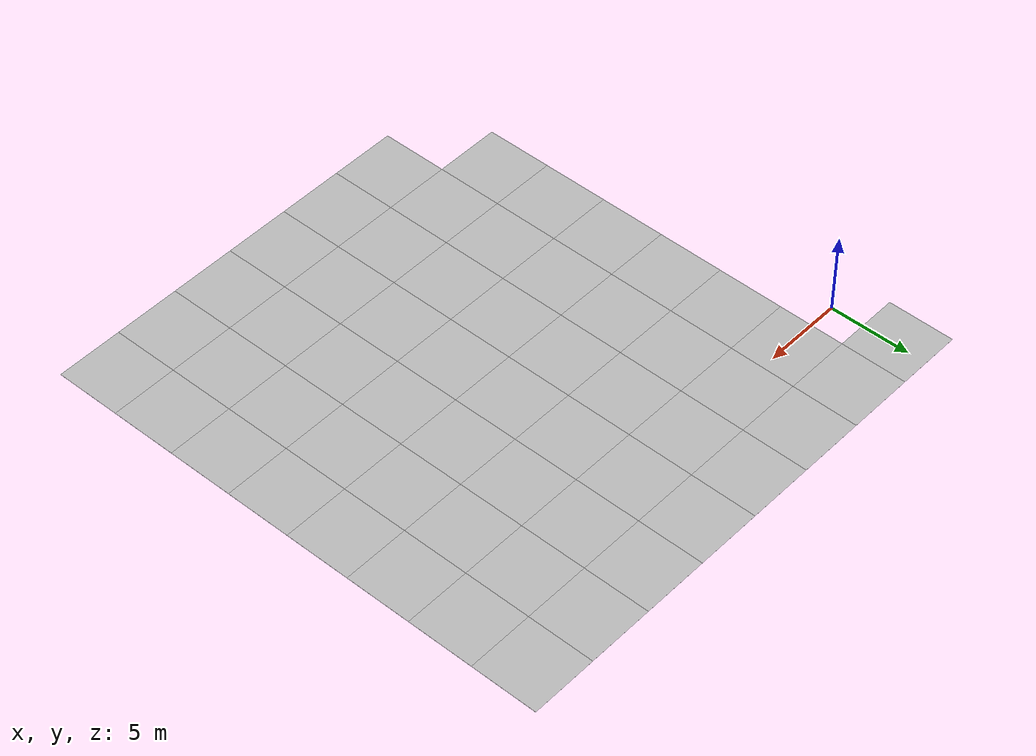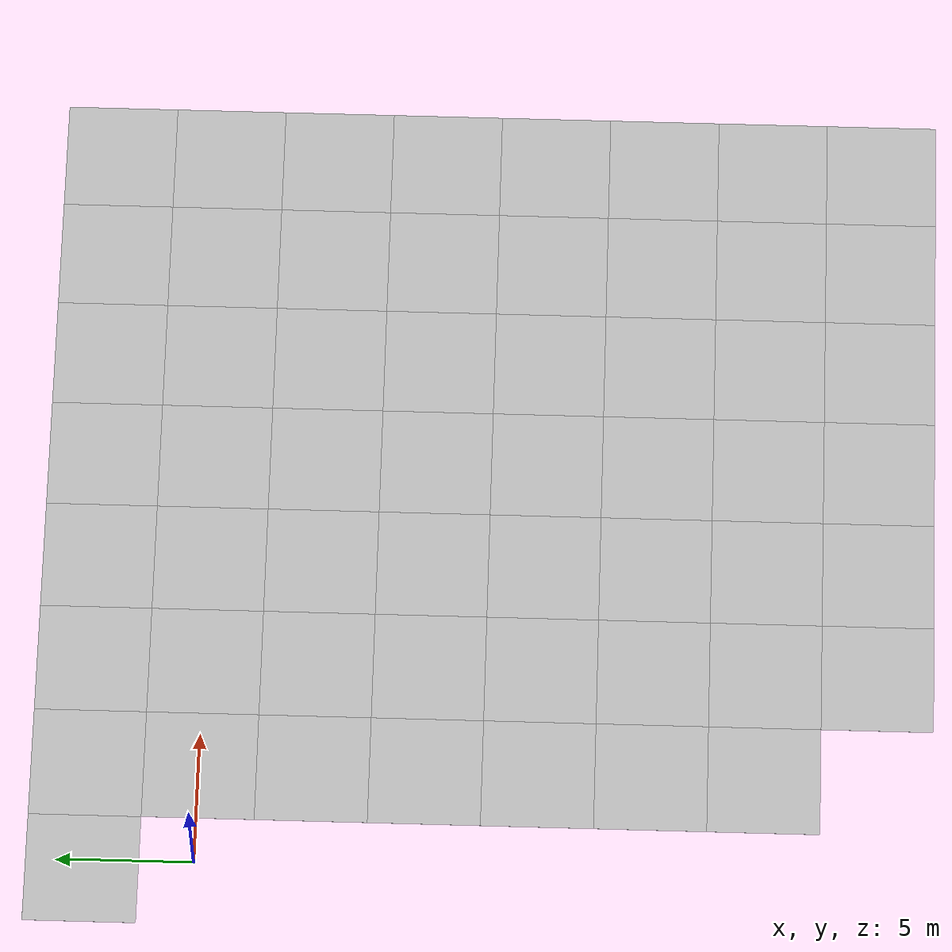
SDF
<sdf version="1.6">
 <world name="default">
  <model name="Tile/18-14">
   <static>1</static>
   <link name="link">
    <collision name="collision">
     <geometry><plane><normal>0 0 1</normal><size>4.096 4.096</size></plane></geometry>
     <surface><friction><ode><mu>100</mu><mu2>50</mu2></ode></friction></surface>
    </collision>
    <visual name="visual">
     <cast_shadows>0</cast_shadows>
     <geometry><plane><normal>0 0 1</normal><size>4.096 4.096</size></plane></geometry>
     <material>
      <script>
       <uri>file://materials/scripts</uri>
       <uri>file://materials/textures</uri>
       <name>Tile/5eab350b8220ac9944dbdfa4ac3288c7c17e24c3bf5df0dfcf6173d64dae00a1</name>
      </script>
     </material>
    </visual>
   </link>
   <pose>-0.2978730057677694 4.047896724705765 0 0 -0 0</pose>
  </model>
  <model name="Tile/19-8">
   <static>1</static>
   <link name="link">
    <collision name="collision">
     <geometry><plane><normal>0 0 1</normal><size>4.096 4.096</size></plane></geometry>
     <surface><friction><ode><mu>100</mu><mu2>50</mu2></ode></friction></surface>
    </collision>
    <visual name="visual">
     <cast_shadows>0</cast_shadows>
     <geometry><plane><normal>0 0 1</normal><size>4.096 4.096</size></plane></geometry>
     <material>
      <script>
       <uri>file://materials/scripts</uri>
       <uri>file://materials/textures</uri>
       <name>Tile/5eab350b8220ac9944dbdfa4ac3288c7c17e24c3bf5df0dfcf6173d64dae00a1</name>
      </script>
     </material>
    </visual>
   </link>
   <pose>3.798126994232234 -20.528103275294235 0 0 -0 0</pose>
  </model>
  <model name="Tile/19-9">
   <static>1</static>
   <link name="link">
    <collision name="collision">
     <geometry><plane><normal>0 0 1</normal><size>4.096 4.096</size></plane></geometry>
     <surface><friction><ode><mu>100</mu><mu2>50</mu2></ode></friction></surface>
    </collision>
    <visual name="visual">
     <cast_shadows>0</cast_shadows>
     <geometry><plane><normal>0 0 1</normal><size>4.096 4.096</size></plane></geometry>
     <material>
      <script>
       <uri>file://materials/scripts</uri>
       <uri>file://materials/textures</uri>
       <name>Tile/5eab350b8220ac9944dbdfa4ac3288c7c17e24c3bf5df0dfcf6173d64dae00a1</name>
      </script>
     </material>
    </visual>
   </link>
   <pose>3.798126994232234 -16.43210327529424 0 0 -0 0</pose>
  </model>
  <model name="Tile/19-10">
   <static>1</static>
   <link name="link">
    <collision name="collision">
     <geometry><plane><normal>0 0 1</normal><size>4.096 4.096</size></plane></geometry>
     <surface><friction><ode><mu>100</mu><mu2>50</mu2></ode></friction></surface>
    </collision>
    <visual name="visual">
     <cast_shadows>0</cast_shadows>
     <geometry><plane><normal>0 0 1</normal><size>4.096 4.096</size></plane></geometry>
     <material>
      <script>
       <uri>file://materials/scripts</uri>
       <uri>file://materials/textures</uri>
       <name>Tile/5eab350b8220ac9944dbdfa4ac3288c7c17e24c3bf5df0dfcf6173d64dae00a1</name>
      </script>
     </material>
    </visual>
   </link>
   <pose>3.798126994232234 -12.336103275294235 0 0 -0 0</pose>
  </model>
  <model name="Tile/19-11">
   <static>1</static>
   <link name="link">
    <collision name="collision">
     <geometry><plane><normal>0 0 1</normal><size>4.096 4.096</size></plane></geometry>
     <surface><friction><ode><mu>100</mu><mu2>50</mu2></ode></friction></surface>
    </collision>
    <visual name="visual">
     <cast_shadows>0</cast_shadows>
     <geometry><plane><normal>0 0 1</normal><size>4.096 4.096</size></plane></geometry>
     <material>
      <script>
       <uri>file://materials/scripts</uri>
       <uri>file://materials/textures</uri>
       <name>Tile/5eab350b8220ac9944dbdfa4ac3288c7c17e24c3bf5df0dfcf6173d64dae00a1</name>
      </script>
     </material>
    </visual>
   </link>
   <pose>3.798126994232234 -8.240103275294238 0 0 -0 0</pose>
  </model>
  <model name="Tile/19-12">
   <static>1</static>
   <link name="link">
    <collision name="collision">
     <geometry><plane><normal>0 0 1</normal><size>4.096 4.096</size></plane></geometry>
     <surface><friction><ode><mu>100</mu><mu2>50</mu2></ode></friction></surface>
    </collision>
    <visual name="visual">
     <cast_shadows>0</cast_shadows>
     <geometry><plane><normal>0 0 1</normal><size>4.096 4.096</size></plane></geometry>
     <material>
      <script>
       <uri>file://materials/scripts</uri>
       <uri>file://materials/textures</uri>
       <name>Tile/5eab350b8220ac9944dbdfa4ac3288c7c17e24c3bf5df0dfcf6173d64dae00a1</name>
      </script>
     </material>
    </visual>
   </link>
   <pose>3.798126994232234 -4.144103275294235 0 0 -0 0</pose>
  </model>
  <model name="Tile/19-13">
   <static>1</static>
   <link name="link">
    <collision name="collision">
     <geometry><plane><normal>0 0 1</normal><size>4.096 4.096</size></plane></geometry>
     <surface><friction><ode><mu>100</mu><mu2>50</mu2></ode></friction></surface>
    </collision>
    <visual name="visual">
     <cast_shadows>0</cast_shadows>
     <geometry><plane><normal>0 0 1</normal><size>4.096 4.096</size></plane></geometry>
     <material>
      <script>
       <uri>file://materials/scripts</uri>
       <uri>file://materials/textures</uri>
       <name>Tile/23695a7ee9c6d89aba903e2d941fed99a3e1350e1f3aff4c9c1e7bca93702cfe</name>
      </script>
     </material>
    </visual>
   </link>
   <pose>3.798126994232234 -0.0481032752942383 0 0 -0 0</pose>
  </model>
  <model name="Tile/19-14">
   <static>1</static>
   <link name="link">
    <collision name="collision">
     <geometry><plane><normal>0 0 1</normal><size>4.096 4.096</size></plane></geometry>
     <surface><friction><ode><mu>100</mu><mu2>50</mu2></ode></friction></surface>
    </collision>
    <visual name="visual">
     <cast_shadows>0</cast_shadows>
     <geometry><plane><normal>0 0 1</normal><size>4.096 4.096</size></plane></geometry>
     <material>
      <script>
       <uri>file://materials/scripts</uri>
       <uri>file://materials/textures</uri>
       <name>Tile/5eab350b8220ac9944dbdfa4ac3288c7c17e24c3bf5df0dfcf6173d64dae00a1</name>
      </script>
     </material>
    </visual>
   </link>
   <pose>3.798126994232234 4.047896724705765 0 0 -0 0</pose>
  </model>
  <model name="Tile/20-7">
   <static>1</static>
   <link name="link">
    <collision name="collision">
     <geometry><plane><normal>0 0 1</normal><size>4.096 4.096</size></plane></geometry>
     <surface><friction><ode><mu>100</mu><mu2>50</mu2></ode></friction></surface>
    </collision>
    <visual name="visual">
     <cast_shadows>0</cast_shadows>
     <geometry><plane><normal>0 0 1</normal><size>4.096 4.096</size></plane></geometry>
     <material>
      <script>
       <uri>file://materials/scripts</uri>
       <uri>file://materials/textures</uri>
       <name>Tile/5eab350b8220ac9944dbdfa4ac3288c7c17e24c3bf5df0dfcf6173d64dae00a1</name>
      </script>
     </material>
    </visual>
   </link>
   <pose>7.894126994232238 -24.62410327529424 0 0 -0 0</pose>
  </model>
  <model name="Tile/20-8">
   <static>1</static>
   <link name="link">
    <collision name="collision">
     <geometry><plane><normal>0 0 1</normal><size>4.096 4.096</size></plane></geometry>
     <surface><friction><ode><mu>100</mu><mu2>50</mu2></ode></friction></surface>
    </collision>
    <visual name="visual">
     <cast_shadows>0</cast_shadows>
     <geometry><plane><normal>0 0 1</normal><size>4.096 4.096</size></plane></geometry>
     <material>
      <script>
       <uri>file://materials/scripts</uri>
       <uri>file://materials/textures</uri>
       <name>Tile/5eab350b8220ac9944dbdfa4ac3288c7c17e24c3bf5df0dfcf6173d64dae00a1</name>
      </script>
     </material>
    </visual>
   </link>
   <pose>7.894126994232238 -20.528103275294235 0 0 -0 0</pose>
  </model>
  <model name="Tile/20-9">
   <static>1</static>
   <link name="link">
    <collision name="collision">
     <geometry><plane><normal>0 0 1</normal><size>4.096 4.096</size></plane></geometry>
     <surface><friction><ode><mu>100</mu><mu2>50</mu2></ode></friction></surface>
    </collision>
    <visual name="visual">
     <cast_shadows>0</cast_shadows>
     <geometry><plane><normal>0 0 1</normal><size>4.096 4.096</size></plane></geometry>
     <material>
      <script>
       <uri>file://materials/scripts</uri>
       <uri>file://materials/textures</uri>
       <name>Tile/5eab350b8220ac9944dbdfa4ac3288c7c17e24c3bf5df0dfcf6173d64dae00a1</name>
      </script>
     </material>
    </visual>
   </link>
   <pose>7.894126994232238 -16.43210327529424 0 0 -0 0</pose>
  </model>
  <model name="Tile/20-10">
   <static>1</static>
   <link name="link">
    <collision name="collision">
     <geometry><plane><normal>0 0 1</normal><size>4.096 4.096</size></plane></geometry>
     <surface><friction><ode><mu>100</mu><mu2>50</mu2></ode></friction></surface>
    </collision>
    <visual name="visual">
     <cast_shadows>0</cast_shadows>
     <geometry><plane><normal>0 0 1</normal><size>4.096 4.096</size></plane></geometry>
     <material>
      <script>
       <uri>file://materials/scripts</uri>
       <uri>file://materials/textures</uri>
       <name>Tile/5eab350b8220ac9944dbdfa4ac3288c7c17e24c3bf5df0dfcf6173d64dae00a1</name>
      </script>
     </material>
    </visual>
   </link>
   <pose>7.894126994232238 -12.336103275294235 0 0 -0 0</pose>
  </model>
  <model name="Tile/20-11">
   <static>1</static>
   <link name="link">
    <collision name="collision">
     <geometry><plane><normal>0 0 1</normal><size>4.096 4.096</size></plane></geometry>
     <surface><friction><ode><mu>100</mu><mu2>50</mu2></ode></friction></surface>
    </collision>
    <visual name="visual">
     <cast_shadows>0</cast_shadows>
     <geometry><plane><normal>0 0 1</normal><size>4.096 4.096</size></plane></geometry>
     <material>
      <script>
       <uri>file://materials/scripts</uri>
       <uri>file://materials/textures</uri>
       <name>Tile/5eab350b8220ac9944dbdfa4ac3288c7c17e24c3bf5df0dfcf6173d64dae00a1</name>
      </script>
     </material>
    </visual>
   </link>
   <pose>7.894126994232238 -8.240103275294238 0 0 -0 0</pose>
  </model>
  <model name="Tile/20-12">
   <static>1</static>
   <link name="link">
    <collision name="collision">
     <geometry><plane><normal>0 0 1</normal><size>4.096 4.096</size></plane></geometry>
     <surface><friction><ode><mu>100</mu><mu2>50</mu2></ode></friction></surface>
    </collision>
    <visual name="visual">
     <cast_shadows>0</cast_shadows>
     <geometry><plane><normal>0 0 1</normal><size>4.096 4.096</size></plane></geometry>
     <material>
      <script>
       <uri>file://materials/scripts</uri>
       <uri>file://materials/textures</uri>
       <name>Tile/5eab350b8220ac9944dbdfa4ac3288c7c17e24c3bf5df0dfcf6173d64dae00a1</name>
      </script>
     </material>
    </visual>
   </link>
   <pose>7.894126994232238 -4.144103275294235 0 0 -0 0</pose>
  </model>
  <model name="Tile/20-13">
   <static>1</static>
   <link name="link">
    <collision name="collision">
     <geometry><plane><normal>0 0 1</normal><size>4.096 4.096</size></plane></geometry>
     <surface><friction><ode><mu>100</mu><mu2>50</mu2></ode></friction></surface>
    </collision>
    <visual name="visual">
     <cast_shadows>0</cast_shadows>
     <geometry><plane><normal>0 0 1</normal><size>4.096 4.096</size></plane></geometry>
     <material>
      <script>
       <uri>file://materials/scripts</uri>
       <uri>file://materials/textures</uri>
       <name>Tile/23602d34b947ffc31b58d9232dd9e5df70742dd58f6749c244851e8aa4f60fff</name>
      </script>
     </material>
    </visual>
   </link>
   <pose>7.894126994232238 -0.0481032752942383 0 0 -0 0</pose>
  </model>
  <model name="Tile/20-14">
   <static>1</static>
   <link name="link">
    <collision name="collision">
     <geometry><plane><normal>0 0 1</normal><size>4.096 4.096</size></plane></geometry>
     <surface><friction><ode><mu>100</mu><mu2>50</mu2></ode></friction></surface>
    </collision>
    <visual name="visual">
     <cast_shadows>0</cast_shadows>
     <geometry><plane><normal>0 0 1</normal><size>4.096 4.096</size></plane></geometry>
     <material>
      <script>
       <uri>file://materials/scripts</uri>
       <uri>file://materials/textures</uri>
       <name>Tile/5eab350b8220ac9944dbdfa4ac3288c7c17e24c3bf5df0dfcf6173d64dae00a1</name>
      </script>
     </material>
    </visual>
   </link>
   <pose>7.894126994232238 4.047896724705765 0 0 -0 0</pose>
  </model>
  <model name="Tile/21-7">
   <static>1</static>
   <link name="link">
    <collision name="collision">
     <geometry><plane><normal>0 0 1</normal><size>4.096 4.096</size></plane></geometry>
     <surface><friction><ode><mu>100</mu><mu2>50</mu2></ode></friction></surface>
    </collision>
    <visual name="visual">
     <cast_shadows>0</cast_shadows>
     <geometry><plane><normal>0 0 1</normal><size>4.096 4.096</size></plane></geometry>
     <material>
      <script>
       <uri>file://materials/scripts</uri>
       <uri>file://materials/textures</uri>
       <name>Tile/5eab350b8220ac9944dbdfa4ac3288c7c17e24c3bf5df0dfcf6173d64dae00a1</name>
      </script>
     </material>
    </visual>
   </link>
   <pose>11.990126994232227 -24.62410327529424 0 0 -0 0</pose>
  </model>
  <model name="Tile/21-8">
   <static>1</static>
   <link name="link">
    <collision name="collision">
     <geometry><plane><normal>0 0 1</normal><size>4.096 4.096</size></plane></geometry>
     <surface><friction><ode><mu>100</mu><mu2>50</mu2></ode></friction></surface>
    </collision>
    <visual name="visual">
     <cast_shadows>0</cast_shadows>
     <geometry><plane><normal>0 0 1</normal><size>4.096 4.096</size></plane></geometry>
     <material>
      <script>
       <uri>file://materials/scripts</uri>
       <uri>file://materials/textures</uri>
       <name>Tile/5eab350b8220ac9944dbdfa4ac3288c7c17e24c3bf5df0dfcf6173d64dae00a1</name>
      </script>
     </material>
    </visual>
   </link>
   <pose>11.990126994232227 -20.528103275294235 0 0 -0 0</pose>
  </model>
  <model name="Tile/21-9">
   <static>1</static>
   <link name="link">
    <collision name="collision">
     <geometry><plane><normal>0 0 1</normal><size>4.096 4.096</size></plane></geometry>
     <surface><friction><ode><mu>100</mu><mu2>50</mu2></ode></friction></surface>
    </collision>
    <visual name="visual">
     <cast_shadows>0</cast_shadows>
     <geometry><plane><normal>0 0 1</normal><size>4.096 4.096</size></plane></geometry>
     <material>
      <script>
       <uri>file://materials/scripts</uri>
       <uri>file://materials/textures</uri>
       <name>Tile/5eab350b8220ac9944dbdfa4ac3288c7c17e24c3bf5df0dfcf6173d64dae00a1</name>
      </script>
     </material>
    </visual>
   </link>
   <pose>11.990126994232227 -16.43210327529424 0 0 -0 0</pose>
  </model>
  <model name="Tile/21-10">
   <static>1</static>
   <link name="link">
    <collision name="collision">
     <geometry><plane><normal>0 0 1</normal><size>4.096 4.096</size></plane></geometry>
     <surface><friction><ode><mu>100</mu><mu2>50</mu2></ode></friction></surface>
    </collision>
    <visual name="visual">
     <cast_shadows>0</cast_shadows>
     <geometry><plane><normal>0 0 1</normal><size>4.096 4.096</size></plane></geometry>
     <material>
      <script>
       <uri>file://materials/scripts</uri>
       <uri>file://materials/textures</uri>
       <name>Tile/5eab350b8220ac9944dbdfa4ac3288c7c17e24c3bf5df0dfcf6173d64dae00a1</name>
      </script>
     </material>
    </visual>
   </link>
   <pose>11.990126994232227 -12.336103275294235 0 0 -0 0</pose>
  </model>
  <model name="Tile/21-11">
   <static>1</static>
   <link name="link">
    <collision name="collision">
     <geometry><plane><normal>0 0 1</normal><size>4.096 4.096</size></plane></geometry>
     <surface><friction><ode><mu>100</mu><mu2>50</mu2></ode></friction></surface>
    </collision>
    <visual name="visual">
     <cast_shadows>0</cast_shadows>
     <geometry><plane><normal>0 0 1</normal><size>4.096 4.096</size></plane></geometry>
     <material>
      <script>
       <uri>file://materials/scripts</uri>
       <uri>file://materials/textures</uri>
       <name>Tile/5eab350b8220ac9944dbdfa4ac3288c7c17e24c3bf5df0dfcf6173d64dae00a1</name>
      </script>
     </material>
    </visual>
   </link>
   <pose>11.990126994232227 -8.240103275294238 0 0 -0 0</pose>
  </model>
  <model name="Tile/21-12">
   <static>1</static>
   <link name="link">
    <collision name="collision">
     <geometry><plane><normal>0 0 1</normal><size>4.096 4.096</size></plane></geometry>
     <surface><friction><ode><mu>100</mu><mu2>50</mu2></ode></friction></surface>
    </collision>
    <visual name="visual">
     <cast_shadows>0</cast_shadows>
     <geometry><plane><normal>0 0 1</normal><size>4.096 4.096</size></plane></geometry>
     <material>
      <script>
       <uri>file://materials/scripts</uri>
       <uri>file://materials/textures</uri>
       <name>Tile/daec403ef0904b954e8d8f1789c925c326f13e26e9f340639eeef6fef6aef5f7</name>
      </script>
     </material>
    </visual>
   </link>
   <pose>11.990126994232227 -4.144103275294235 0 0 -0 0</pose>
  </model>
  <model name="Tile/21-13">
   <static>1</static>
   <link name="link">
    <collision name="collision">
     <geometry><plane><normal>0 0 1</normal><size>4.096 4.096</size></plane></geometry>
     <surface><friction><ode><mu>100</mu><mu2>50</mu2></ode></friction></surface>
    </collision>
    <visual name="visual">
     <cast_shadows>0</cast_shadows>
     <geometry><plane><normal>0 0 1</normal><size>4.096 4.096</size></plane></geometry>
     <material>
      <script>
       <uri>file://materials/scripts</uri>
       <uri>file://materials/textures</uri>
       <name>Tile/b3a69c46e49d94a3db709adf9eb553ad62885bb9de20a7c1c902c2f8c6a87f97</name>
      </script>
     </material>
    </visual>
   </link>
   <pose>11.990126994232227 -0.0481032752942383 0 0 -0 0</pose>
  </model>
  <model name="Tile/21-14">
   <static>1</static>
   <link name="link">
    <collision name="collision">
     <geometry><plane><normal>0 0 1</normal><size>4.096 4.096</size></plane></geometry>
     <surface><friction><ode><mu>100</mu><mu2>50</mu2></ode></friction></surface>
    </collision>
    <visual name="visual">
     <cast_shadows>0</cast_shadows>
     <geometry><plane><normal>0 0 1</normal><size>4.096 4.096</size></plane></geometry>
     <material>
      <script>
       <uri>file://materials/scripts</uri>
       <uri>file://materials/textures</uri>
       <name>Tile/5eab350b8220ac9944dbdfa4ac3288c7c17e24c3bf5df0dfcf6173d64dae00a1</name>
      </script>
     </material>
    </visual>
   </link>
   <pose>11.990126994232227 4.047896724705765 0 0 -0 0</pose>
  </model>
  <model name="Tile/22-7">
   <static>1</static>
   <link name="link">
    <collision name="collision">
     <geometry><plane><normal>0 0 1</normal><size>4.096 4.096</size></plane></geometry>
     <surface><friction><ode><mu>100</mu><mu2>50</mu2></ode></friction></surface>
    </collision>
    <visual name="visual">
     <cast_shadows>0</cast_shadows>
     <geometry><plane><normal>0 0 1</normal><size>4.096 4.096</size></plane></geometry>
     <material>
      <script>
       <uri>file://materials/scripts</uri>
       <uri>file://materials/textures</uri>
       <name>Tile/f686b3e087b6551af0a7697e232a03eafbd4f767710ff0260e1553ef7ca57d43</name>
      </script>
     </material>
    </visual>
   </link>
   <pose>16.08612699423223 -24.62410327529424 0 0 -0 0</pose>
  </model>
  <model name="Tile/22-8">
   <static>1</static>
   <link name="link">
    <collision name="collision">
     <geometry><plane><normal>0 0 1</normal><size>4.096 4.096</size></plane></geometry>
     <surface><friction><ode><mu>100</mu><mu2>50</mu2></ode></friction></surface>
    </collision>
    <visual name="visual">
     <cast_shadows>0</cast_shadows>
     <geometry><plane><normal>0 0 1</normal><size>4.096 4.096</size></plane></geometry>
     <material>
      <script>
       <uri>file://materials/scripts</uri>
       <uri>file://materials/textures</uri>
       <name>Tile/5eab350b8220ac9944dbdfa4ac3288c7c17e24c3bf5df0dfcf6173d64dae00a1</name>
      </script>
     </material>
    </visual>
   </link>
   <pose>16.08612699423223 -20.528103275294235 0 0 -0 0</pose>
  </model>
  <model name="Tile/22-9">
   <static>1</static>
   <link name="link">
    <collision name="collision">
     <geometry><plane><normal>0 0 1</normal><size>4.096 4.096</size></plane></geometry>
     <surface><friction><ode><mu>100</mu><mu2>50</mu2></ode></friction></surface>
    </collision>
    <visual name="visual">
     <cast_shadows>0</cast_shadows>
     <geometry><plane><normal>0 0 1</normal><size>4.096 4.096</size></plane></geometry>
     <material>
      <script>
       <uri>file://materials/scripts</uri>
       <uri>file://materials/textures</uri>
       <name>Tile/5eab350b8220ac9944dbdfa4ac3288c7c17e24c3bf5df0dfcf6173d64dae00a1</name>
      </script>
     </material>
    </visual>
   </link>
   <pose>16.08612699423223 -16.43210327529424 0 0 -0 0</pose>
  </model>
  <model name="Tile/22-10">
   <static>1</static>
   <link name="link">
    <collision name="collision">
     <geometry><plane><normal>0 0 1</normal><size>4.096 4.096</size></plane></geometry>
     <surface><friction><ode><mu>100</mu><mu2>50</mu2></ode></friction></surface>
    </collision>
    <visual name="visual">
     <cast_shadows>0</cast_shadows>
     <geometry><plane><normal>0 0 1</normal><size>4.096 4.096</size></plane></geometry>
     <material>
      <script>
       <uri>file://materials/scripts</uri>
       <uri>file://materials/textures</uri>
       <name>Tile/5eab350b8220ac9944dbdfa4ac3288c7c17e24c3bf5df0dfcf6173d64dae00a1</name>
      </script>
     </material>
    </visual>
   </link>
   <pose>16.08612699423223 -12.336103275294235 0 0 -0 0</pose>
  </model>
  <model name="Tile/22-11">
   <static>1</static>
   <link name="link">
    <collision name="collision">
     <geometry><plane><normal>0 0 1</normal><size>4.096 4.096</size></plane></geometry>
     <surface><friction><ode><mu>100</mu><mu2>50</mu2></ode></friction></surface>
    </collision>
    <visual name="visual">
     <cast_shadows>0</cast_shadows>
     <geometry><plane><normal>0 0 1</normal><size>4.096 4.096</size></plane></geometry>
     <material>
      <script>
       <uri>file://materials/scripts</uri>
       <uri>file://materials/textures</uri>
       <name>Tile/4442579c5cf654920569a435e87b45f1ab0e0315d5e90fb53fcf424ae5894b15</name>
      </script>
     </material>
    </visual>
   </link>
   <pose>16.08612699423223 -8.240103275294238 0 0 -0 0</pose>
  </model>
  <model name="Tile/22-12">
   <static>1</static>
   <link name="link">
    <collision name="collision">
     <geometry><plane><normal>0 0 1</normal><size>4.096 4.096</size></plane></geometry>
     <surface><friction><ode><mu>100</mu><mu2>50</mu2></ode></friction></surface>
    </collision>
    <visual name="visual">
     <cast_shadows>0</cast_shadows>
     <geometry><plane><normal>0 0 1</normal><size>4.096 4.096</size></plane></geometry>
     <material>
      <script>
       <uri>file://materials/scripts</uri>
       <uri>file://materials/textures</uri>
       <name>Tile/cfa34f483048e710a00fb18b17e061debc8bc9eaa28286277432d3005baf5a76</name>
      </script>
     </material>
    </visual>
   </link>
   <pose>16.08612699423223 -4.144103275294235 0 0 -0 0</pose>
  </model>
  <model name="Tile/22-13">
   <static>1</static>
   <link name="link">
    <collision name="collision">
     <geometry><plane><normal>0 0 1</normal><size>4.096 4.096</size></plane></geometry>
     <surface><friction><ode><mu>100</mu><mu2>50</mu2></ode></friction></surface>
    </collision>
    <visual name="visual">
     <cast_shadows>0</cast_shadows>
     <geometry><plane><normal>0 0 1</normal><size>4.096 4.096</size></plane></geometry>
     <material>
      <script>
       <uri>file://materials/scripts</uri>
       <uri>file://materials/textures</uri>
       <name>Tile/5eab350b8220ac9944dbdfa4ac3288c7c17e24c3bf5df0dfcf6173d64dae00a1</name>
      </script>
     </material>
    </visual>
   </link>
   <pose>16.08612699423223 -0.0481032752942383 0 0 -0 0</pose>
  </model>
  <model name="Tile/22-14">
   <static>1</static>
   <link name="link">
    <collision name="collision">
     <geometry><plane><normal>0 0 1</normal><size>4.096 4.096</size></plane></geometry>
     <surface><friction><ode><mu>100</mu><mu2>50</mu2></ode></friction></surface>
    </collision>
    <visual name="visual">
     <cast_shadows>0</cast_shadows>
     <geometry><plane><normal>0 0 1</normal><size>4.096 4.096</size></plane></geometry>
     <material>
      <script>
       <uri>file://materials/scripts</uri>
       <uri>file://materials/textures</uri>
       <name>Tile/5eab350b8220ac9944dbdfa4ac3288c7c17e24c3bf5df0dfcf6173d64dae00a1</name>
      </script>
     </material>
    </visual>
   </link>
   <pose>16.08612699423223 4.047896724705765 0 0 -0 0</pose>
  </model>
  <model name="Tile/23-7">
   <static>1</static>
   <link name="link">
    <collision name="collision">
     <geometry><plane><normal>0 0 1</normal><size>4.096 4.096</size></plane></geometry>
     <surface><friction><ode><mu>100</mu><mu2>50</mu2></ode></friction></surface>
    </collision>
    <visual name="visual">
     <cast_shadows>0</cast_shadows>
     <geometry><plane><normal>0 0 1</normal><size>4.096 4.096</size></plane></geometry>
     <material>
      <script>
       <uri>file://materials/scripts</uri>
       <uri>file://materials/textures</uri>
       <name>Tile/04fe4c8cc45da32de04e22fd7b6b016b62b61d7f7de7bb034e36c8a106819d36</name>
      </script>
     </material>
    </visual>
   </link>
   <pose>20.182126994232235 -24.62410327529424 0 0 -0 0</pose>
  </model>
  <model name="Tile/23-8">
   <static>1</static>
   <link name="link">
    <collision name="collision">
     <geometry><plane><normal>0 0 1</normal><size>4.096 4.096</size></plane></geometry>
     <surface><friction><ode><mu>100</mu><mu2>50</mu2></ode></friction></surface>
    </collision>
    <visual name="visual">
     <cast_shadows>0</cast_shadows>
     <geometry><plane><normal>0 0 1</normal><size>4.096 4.096</size></plane></geometry>
     <material>
      <script>
       <uri>file://materials/scripts</uri>
       <uri>file://materials/textures</uri>
       <name>Tile/5eab350b8220ac9944dbdfa4ac3288c7c17e24c3bf5df0dfcf6173d64dae00a1</name>
      </script>
     </material>
    </visual>
   </link>
   <pose>20.182126994232235 -20.528103275294235 0 0 -0 0</pose>
  </model>
  <model name="Tile/23-9">
   <static>1</static>
   <link name="link">
    <collision name="collision">
     <geometry><plane><normal>0 0 1</normal><size>4.096 4.096</size></plane></geometry>
     <surface><friction><ode><mu>100</mu><mu2>50</mu2></ode></friction></surface>
    </collision>
    <visual name="visual">
     <cast_shadows>0</cast_shadows>
     <geometry><plane><normal>0 0 1</normal><size>4.096 4.096</size></plane></geometry>
     <material>
      <script>
       <uri>file://materials/scripts</uri>
       <uri>file://materials/textures</uri>
       <name>Tile/5eab350b8220ac9944dbdfa4ac3288c7c17e24c3bf5df0dfcf6173d64dae00a1</name>
      </script>
     </material>
    </visual>
   </link>
   <pose>20.182126994232235 -16.43210327529424 0 0 -0 0</pose>
  </model>
  <model name="Tile/23-10">
   <static>1</static>
   <link name="link">
    <collision name="collision">
     <geometry><plane><normal>0 0 1</normal><size>4.096 4.096</size></plane></geometry>
     <surface><friction><ode><mu>100</mu><mu2>50</mu2></ode></friction></surface>
    </collision>
    <visual name="visual">
     <cast_shadows>0</cast_shadows>
     <geometry><plane><normal>0 0 1</normal><size>4.096 4.096</size></plane></geometry>
     <material>
      <script>
       <uri>file://materials/scripts</uri>
       <uri>file://materials/textures</uri>
       <name>Tile/e24c71a1dcde80c7f9c82a3ef5d559fa058a73e264631310fa5266dd2bd69530</name>
      </script>
     </material>
    </visual>
   </link>
   <pose>20.182126994232235 -12.336103275294235 0 0 -0 0</pose>
  </model>
  <model name="Tile/23-11">
   <static>1</static>
   <link name="link">
    <collision name="collision">
     <geometry><plane><normal>0 0 1</normal><size>4.096 4.096</size></plane></geometry>
     <surface><friction><ode><mu>100</mu><mu2>50</mu2></ode></friction></surface>
    </collision>
    <visual name="visual">
     <cast_shadows>0</cast_shadows>
     <geometry><plane><normal>0 0 1</normal><size>4.096 4.096</size></plane></geometry>
     <material>
      <script>
       <uri>file://materials/scripts</uri>
       <uri>file://materials/textures</uri>
       <name>Tile/f1a7c1fbe54cbeb843d598a384ba7f3b364c1291d73989310b06c901a4cc6e41</name>
      </script>
     </material>
    </visual>
   </link>
   <pose>20.182126994232235 -8.240103275294238 0 0 -0 0</pose>
  </model>
  <model name="Tile/23-12">
   <static>1</static>
   <link name="link">
    <collision name="collision">
     <geometry><plane><normal>0 0 1</normal><size>4.096 4.096</size></plane></geometry>
     <surface><friction><ode><mu>100</mu><mu2>50</mu2></ode></friction></surface>
    </collision>
    <visual name="visual">
     <cast_shadows>0</cast_shadows>
     <geometry><plane><normal>0 0 1</normal><size>4.096 4.096</size></plane></geometry>
     <material>
      <script>
       <uri>file://materials/scripts</uri>
       <uri>file://materials/textures</uri>
       <name>Tile/5eab350b8220ac9944dbdfa4ac3288c7c17e24c3bf5df0dfcf6173d64dae00a1</name>
      </script>
     </material>
    </visual>
   </link>
   <pose>20.182126994232235 -4.144103275294235 0 0 -0 0</pose>
  </model>
  <model name="Tile/23-13">
   <static>1</static>
   <link name="link">
    <collision name="collision">
     <geometry><plane><normal>0 0 1</normal><size>4.096 4.096</size></plane></geometry>
     <surface><friction><ode><mu>100</mu><mu2>50</mu2></ode></friction></surface>
    </collision>
    <visual name="visual">
     <cast_shadows>0</cast_shadows>
     <geometry><plane><normal>0 0 1</normal><size>4.096 4.096</size></plane></geometry>
     <material>
      <script>
       <uri>file://materials/scripts</uri>
       <uri>file://materials/textures</uri>
       <name>Tile/5eab350b8220ac9944dbdfa4ac3288c7c17e24c3bf5df0dfcf6173d64dae00a1</name>
      </script>
     </material>
    </visual>
   </link>
   <pose>20.182126994232235 -0.0481032752942383 0 0 -0 0</pose>
  </model>
  <model name="Tile/23-14">
   <static>1</static>
   <link name="link">
    <collision name="collision">
     <geometry><plane><normal>0 0 1</normal><size>4.096 4.096</size></plane></geometry>
     <surface><friction><ode><mu>100</mu><mu2>50</mu2></ode></friction></surface>
    </collision>
    <visual name="visual">
     <cast_shadows>0</cast_shadows>
     <geometry><plane><normal>0 0 1</normal><size>4.096 4.096</size></plane></geometry>
     <material>
      <script>
       <uri>file://materials/scripts</uri>
       <uri>file://materials/textures</uri>
       <name>Tile/5eab350b8220ac9944dbdfa4ac3288c7c17e24c3bf5df0dfcf6173d64dae00a1</name>
      </script>
     </material>
    </visual>
   </link>
   <pose>20.182126994232235 4.047896724705765 0 0 -0 0</pose>
  </model>
  <model name="Tile/24-7">
   <static>1</static>
   <link name="link">
    <collision name="collision">
     <geometry><plane><normal>0 0 1</normal><size>4.096 4.096</size></plane></geometry>
     <surface><friction><ode><mu>100</mu><mu2>50</mu2></ode></friction></surface>
    </collision>
    <visual name="visual">
     <cast_shadows>0</cast_shadows>
     <geometry><plane><normal>0 0 1</normal><size>4.096 4.096</size></plane></geometry>
     <material>
      <script>
       <uri>file://materials/scripts</uri>
       <uri>file://materials/textures</uri>
       <name>Tile/0cb7485f724abcf029ac8d39587dccc74e652f8966048c9b8794d9b1679e40b5</name>
      </script>
     </material>
    </visual>
   </link>
   <pose>24.278126994232238 -24.62410327529424 0 0 -0 0</pose>
  </model>
  <model name="Tile/24-8">
   <static>1</static>
   <link name="link">
    <collision name="collision">
     <geometry><plane><normal>0 0 1</normal><size>4.096 4.096</size></plane></geometry>
     <surface><friction><ode><mu>100</mu><mu2>50</mu2></ode></friction></surface>
    </collision>
    <visual name="visual">
     <cast_shadows>0</cast_shadows>
     <geometry><plane><normal>0 0 1</normal><size>4.096 4.096</size></plane></geometry>
     <material>
      <script>
       <uri>file://materials/scripts</uri>
       <uri>file://materials/textures</uri>
       <name>Tile/b51a34ce4a366d59ccb2631ebfe33d6a33b9cf63d402aae14330cb449f46c94e</name>
      </script>
     </material>
    </visual>
   </link>
   <pose>24.278126994232238 -20.528103275294235 0 0 -0 0</pose>
  </model>
  <model name="Tile/24-9">
   <static>1</static>
   <link name="link">
    <collision name="collision">
     <geometry><plane><normal>0 0 1</normal><size>4.096 4.096</size></plane></geometry>
     <surface><friction><ode><mu>100</mu><mu2>50</mu2></ode></friction></surface>
    </collision>
    <visual name="visual">
     <cast_shadows>0</cast_shadows>
     <geometry><plane><normal>0 0 1</normal><size>4.096 4.096</size></plane></geometry>
     <material>
      <script>
       <uri>file://materials/scripts</uri>
       <uri>file://materials/textures</uri>
       <name>Tile/266fa457beaa7c839d84912f42b01dc725d53475e6dd8261a5b841557d804796</name>
      </script>
     </material>
    </visual>
   </link>
   <pose>24.278126994232238 -16.43210327529424 0 0 -0 0</pose>
  </model>
  <model name="Tile/24-10">
   <static>1</static>
   <link name="link">
    <collision name="collision">
     <geometry><plane><normal>0 0 1</normal><size>4.096 4.096</size></plane></geometry>
     <surface><friction><ode><mu>100</mu><mu2>50</mu2></ode></friction></surface>
    </collision>
    <visual name="visual">
     <cast_shadows>0</cast_shadows>
     <geometry><plane><normal>0 0 1</normal><size>4.096 4.096</size></plane></geometry>
     <material>
      <script>
       <uri>file://materials/scripts</uri>
       <uri>file://materials/textures</uri>
       <name>Tile/e32894b4b51cfa1e96ce071794b26372cbf355c74a724bace804e6441c44669a</name>
      </script>
     </material>
    </visual>
   </link>
   <pose>24.278126994232238 -12.336103275294235 0 0 -0 0</pose>
  </model>
  <model name="Tile/24-11">
   <static>1</static>
   <link name="link">
    <collision name="collision">
     <geometry><plane><normal>0 0 1</normal><size>4.096 4.096</size></plane></geometry>
     <surface><friction><ode><mu>100</mu><mu2>50</mu2></ode></friction></surface>
    </collision>
    <visual name="visual">
     <cast_shadows>0</cast_shadows>
     <geometry><plane><normal>0 0 1</normal><size>4.096 4.096</size></plane></geometry>
     <material>
      <script>
       <uri>file://materials/scripts</uri>
       <uri>file://materials/textures</uri>
       <name>Tile/5eab350b8220ac9944dbdfa4ac3288c7c17e24c3bf5df0dfcf6173d64dae00a1</name>
      </script>
     </material>
    </visual>
   </link>
   <pose>24.278126994232238 -8.240103275294238 0 0 -0 0</pose>
  </model>
  <model name="Tile/24-12">
   <static>1</static>
   <link name="link">
    <collision name="collision">
     <geometry><plane><normal>0 0 1</normal><size>4.096 4.096</size></plane></geometry>
     <surface><friction><ode><mu>100</mu><mu2>50</mu2></ode></friction></surface>
    </collision>
    <visual name="visual">
     <cast_shadows>0</cast_shadows>
     <geometry><plane><normal>0 0 1</normal><size>4.096 4.096</size></plane></geometry>
     <material>
      <script>
       <uri>file://materials/scripts</uri>
       <uri>file://materials/textures</uri>
       <name>Tile/5eab350b8220ac9944dbdfa4ac3288c7c17e24c3bf5df0dfcf6173d64dae00a1</name>
      </script>
     </material>
    </visual>
   </link>
   <pose>24.278126994232238 -4.144103275294235 0 0 -0 0</pose>
  </model>
  <model name="Tile/24-13">
   <static>1</static>
   <link name="link">
    <collision name="collision">
     <geometry><plane><normal>0 0 1</normal><size>4.096 4.096</size></plane></geometry>
     <surface><friction><ode><mu>100</mu><mu2>50</mu2></ode></friction></surface>
    </collision>
    <visual name="visual">
     <cast_shadows>0</cast_shadows>
     <geometry><plane><normal>0 0 1</normal><size>4.096 4.096</size></plane></geometry>
     <material>
      <script>
       <uri>file://materials/scripts</uri>
       <uri>file://materials/textures</uri>
       <name>Tile/5eab350b8220ac9944dbdfa4ac3288c7c17e24c3bf5df0dfcf6173d64dae00a1</name>
      </script>
     </material>
    </visual>
   </link>
   <pose>24.278126994232238 -0.0481032752942383 0 0 -0 0</pose>
  </model>
  <model name="Tile/24-14">
   <static>1</static>
   <link name="link">
    <collision name="collision">
     <geometry><plane><normal>0 0 1</normal><size>4.096 4.096</size></plane></geometry>
     <surface><friction><ode><mu>100</mu><mu2>50</mu2></ode></friction></surface>
    </collision>
    <visual name="visual">
     <cast_shadows>0</cast_shadows>
     <geometry><plane><normal>0 0 1</normal><size>4.096 4.096</size></plane></geometry>
     <material>
      <script>
       <uri>file://materials/scripts</uri>
       <uri>file://materials/textures</uri>
       <name>Tile/5eab350b8220ac9944dbdfa4ac3288c7c17e24c3bf5df0dfcf6173d64dae00a1</name>
      </script>
     </material>
    </visual>
   </link>
   <pose>24.278126994232238 4.047896724705765 0 0 -0 0</pose>
  </model>
  <model name="Tile/25-7">
   <static>1</static>
   <link name="link">
    <collision name="collision">
     <geometry><plane><normal>0 0 1</normal><size>4.096 4.096</size></plane></geometry>
     <surface><friction><ode><mu>100</mu><mu2>50</mu2></ode></friction></surface>
    </collision>
    <visual name="visual">
     <cast_shadows>0</cast_shadows>
     <geometry><plane><normal>0 0 1</normal><size>4.096 4.096</size></plane></geometry>
     <material>
      <script>
       <uri>file://materials/scripts</uri>
       <uri>file://materials/textures</uri>
       <name>Tile/5eab350b8220ac9944dbdfa4ac3288c7c17e24c3bf5df0dfcf6173d64dae00a1</name>
      </script>
     </material>
    </visual>
   </link>
   <pose>28.374126994232228 -24.62410327529424 0 0 -0 0</pose>
  </model>
  <model name="Tile/25-8">
   <static>1</static>
   <link name="link">
    <collision name="collision">
     <geometry><plane><normal>0 0 1</normal><size>4.096 4.096</size></plane></geometry>
     <surface><friction><ode><mu>100</mu><mu2>50</mu2></ode></friction></surface>
    </collision>
    <visual name="visual">
     <cast_shadows>0</cast_shadows>
     <geometry><plane><normal>0 0 1</normal><size>4.096 4.096</size></plane></geometry>
     <material>
      <script>
       <uri>file://materials/scripts</uri>
       <uri>file://materials/textures</uri>
       <name>Tile/a5c06833859bf87686a71e0b1c884df3d132097384f8dfd4789dc7d2a1449b6d</name>
      </script>
     </material>
    </visual>
   </link>
   <pose>28.374126994232228 -20.528103275294235 0 0 -0 0</pose>
  </model>
  <model name="Tile/25-9">
   <static>1</static>
   <link name="link">
    <collision name="collision">
     <geometry><plane><normal>0 0 1</normal><size>4.096 4.096</size></plane></geometry>
     <surface><friction><ode><mu>100</mu><mu2>50</mu2></ode></friction></surface>
    </collision>
    <visual name="visual">
     <cast_shadows>0</cast_shadows>
     <geometry><plane><normal>0 0 1</normal><size>4.096 4.096</size></plane></geometry>
     <material>
      <script>
       <uri>file://materials/scripts</uri>
       <uri>file://materials/textures</uri>
       <name>Tile/b5181f4cce6f9f939c317ed3cd0d636c49d7fdf79ec15d62993af0f2e188fb60</name>
      </script>
     </material>
    </visual>
   </link>
   <pose>28.374126994232228 -16.43210327529424 0 0 -0 0</pose>
  </model>
  <model name="Tile/25-10">
   <static>1</static>
   <link name="link">
    <collision name="collision">
     <geometry><plane><normal>0 0 1</normal><size>4.096 4.096</size></plane></geometry>
     <surface><friction><ode><mu>100</mu><mu2>50</mu2></ode></friction></surface>
    </collision>
    <visual name="visual">
     <cast_shadows>0</cast_shadows>
     <geometry><plane><normal>0 0 1</normal><size>4.096 4.096</size></plane></geometry>
     <material>
      <script>
       <uri>file://materials/scripts</uri>
       <uri>file://materials/textures</uri>
       <name>Tile/5eab350b8220ac9944dbdfa4ac3288c7c17e24c3bf5df0dfcf6173d64dae00a1</name>
      </script>
     </material>
    </visual>
   </link>
   <pose>28.374126994232228 -12.336103275294235 0 0 -0 0</pose>
  </model>
  <model name="Tile/25-11">
   <static>1</static>
   <link name="link">
    <collision name="collision">
     <geometry><plane><normal>0 0 1</normal><size>4.096 4.096</size></plane></geometry>
     <surface><friction><ode><mu>100</mu><mu2>50</mu2></ode></friction></surface>
    </collision>
    <visual name="visual">
     <cast_shadows>0</cast_shadows>
     <geometry><plane><normal>0 0 1</normal><size>4.096 4.096</size></plane></geometry>
     <material>
      <script>
       <uri>file://materials/scripts</uri>
       <uri>file://materials/textures</uri>
       <name>Tile/5eab350b8220ac9944dbdfa4ac3288c7c17e24c3bf5df0dfcf6173d64dae00a1</name>
      </script>
     </material>
    </visual>
   </link>
   <pose>28.374126994232228 -8.240103275294238 0 0 -0 0</pose>
  </model>
  <model name="Tile/25-12">
   <static>1</static>
   <link name="link">
    <collision name="collision">
     <geometry><plane><normal>0 0 1</normal><size>4.096 4.096</size></plane></geometry>
     <surface><friction><ode><mu>100</mu><mu2>50</mu2></ode></friction></surface>
    </collision>
    <visual name="visual">
     <cast_shadows>0</cast_shadows>
     <geometry><plane><normal>0 0 1</normal><size>4.096 4.096</size></plane></geometry>
     <material>
      <script>
       <uri>file://materials/scripts</uri>
       <uri>file://materials/textures</uri>
       <name>Tile/5eab350b8220ac9944dbdfa4ac3288c7c17e24c3bf5df0dfcf6173d64dae00a1</name>
      </script>
     </material>
    </visual>
   </link>
   <pose>28.374126994232228 -4.144103275294235 0 0 -0 0</pose>
  </model>
  <model name="Tile/25-13">
   <static>1</static>
   <link name="link">
    <collision name="collision">
     <geometry><plane><normal>0 0 1</normal><size>4.096 4.096</size></plane></geometry>
     <surface><friction><ode><mu>100</mu><mu2>50</mu2></ode></friction></surface>
    </collision>
    <visual name="visual">
     <cast_shadows>0</cast_shadows>
     <geometry><plane><normal>0 0 1</normal><size>4.096 4.096</size></plane></geometry>
     <material>
      <script>
       <uri>file://materials/scripts</uri>
       <uri>file://materials/textures</uri>
       <name>Tile/5eab350b8220ac9944dbdfa4ac3288c7c17e24c3bf5df0dfcf6173d64dae00a1</name>
      </script>
     </material>
    </visual>
   </link>
   <pose>28.374126994232228 -0.0481032752942383 0 0 -0 0</pose>
  </model>
  <model name="Tile/25-14">
   <static>1</static>
   <link name="link">
    <collision name="collision">
     <geometry><plane><normal>0 0 1</normal><size>4.096 4.096</size></plane></geometry>
     <surface><friction><ode><mu>100</mu><mu2>50</mu2></ode></friction></surface>
    </collision>
    <visual name="visual">
     <cast_shadows>0</cast_shadows>
     <geometry><plane><normal>0 0 1</normal><size>4.096 4.096</size></plane></geometry>
     <material>
      <script>
       <uri>file://materials/scripts</uri>
       <uri>file://materials/textures</uri>
       <name>Tile/5eab350b8220ac9944dbdfa4ac3288c7c17e24c3bf5df0dfcf6173d64dae00a1</name>
      </script>
     </material>
    </visual>
   </link>
   <pose>28.374126994232228 4.047896724705765 0 0 -0 0</pose>
  </model>
 </world>
</sdf>
